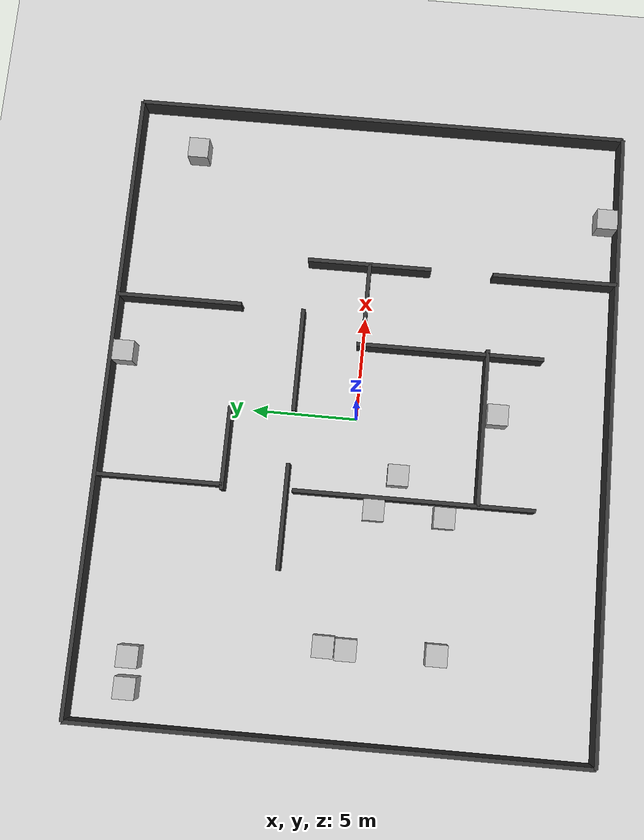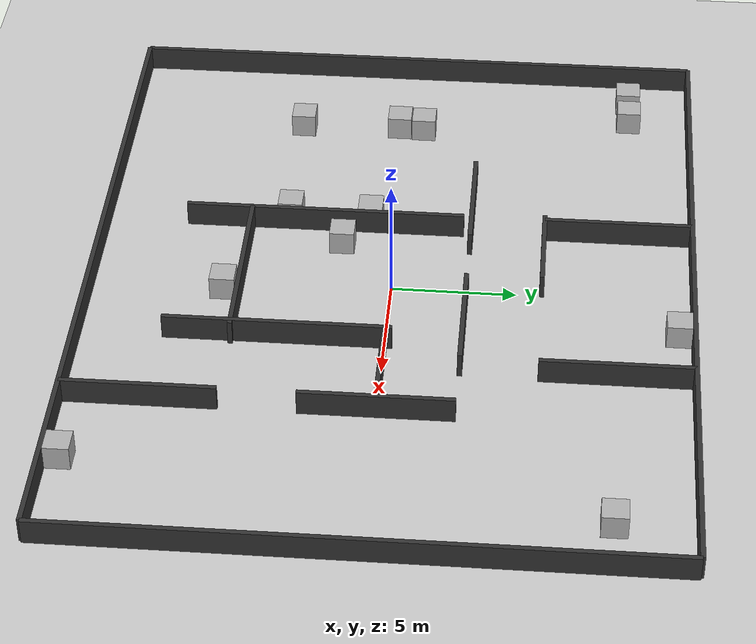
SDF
<sdf version='1.9'>
  <world name='test_world'>
    <physics name='1ms' type='ignored'>
      <max_step_size>0.001</max_step_size>
      <real_time_factor>1</real_time_factor>
      <real_time_update_rate>1000</real_time_update_rate>
    </physics>
    <plugin name='ignition::gazebo::systems::Physics' filename='ignition-gazebo-physics-system'/>
    <plugin name='ignition::gazebo::systems::UserCommands' filename='ignition-gazebo-user-commands-system'/>
    <plugin name='ignition::gazebo::systems::SceneBroadcaster' filename='ignition-gazebo-scene-broadcaster-system'/>
    <gravity>0 0 -9.8</gravity>
    <magnetic_field>6e-06 2.3e-05 -4.2e-05</magnetic_field>
    <atmosphere type='adiabatic'/>
    <scene>
      <ambient>0.4 0.4 0.4 1</ambient>
      <background>0.7 0.7 0.7 1</background>
      <shadows>true</shadows>
    </scene>
    <model name='ground_plane'>
      <static>true</static>
      <link name='link'>
        <collision name='collision'>
          <geometry>
            <plane>
              <normal>0 0 1</normal>
              <size>30 24</size>
            </plane>
          </geometry>
          <surface>
            <friction>
              <ode/>
            </friction>
            <bounce/>
            <contact/>
          </surface>
        </collision>
        <visual name='visual'>
          <geometry>
            <plane>
              <normal>0 0 1</normal>
              <size>30 24</size>
            </plane>
          </geometry>
          <material>
            <ambient>0.8 0.8 0.8 1</ambient>
            <diffuse>0.8 0.8 0.8 1</diffuse>
            <specular>0.8 0.8 0.8 1</specular>
          </material>
        </visual>
        <pose>0 0 0 0 -0 0</pose>
        <inertial>
          <pose>0 0 0 0 -0 0</pose>
          <mass>1</mass>
          <inertia>
            <ixx>1</ixx>
            <ixy>0</ixy>
            <ixz>0</ixz>
            <iyy>1</iyy>
            <iyz>0</iyz>
            <izz>1</izz>
          </inertia>
        </inertial>
        <enable_wind>false</enable_wind>
      </link>
      <pose>0 0 0 0 -0 0</pose>
      <self_collide>false</self_collide>
    </model>
    <model name='wall'>
      <link name='length_right'>
        <pose>0 -12 0 0 -0 0</pose>
        <inertial>
          <mass>1.14395</mass>
          <inertia>
            <ixx>9.5328999999999997</ixx>
            <ixy>0</ixy>
            <ixz>0</ixz>
            <iyy>0.023800000000000002</iyy>
            <iyz>0</iyz>
            <izz>9.5566999999999993</izz>
          </inertia>
          <pose>0 0 0 0 -0 0</pose>
        </inertial>
        <collision name='box_collision'>
          <geometry>
            <box>
              <size>30 0.1875 2</size>
            </box>
          </geometry>
          <surface>
            <friction>
              <ode/>
            </friction>
            <bounce/>
            <contact/>
          </surface>
        </collision>
        <visual name='box_visual'>
          <geometry>
            <box>
              <size>30 0.1875 2</size>
            </box>
          </geometry>
          <material>
            <ambient>0.2 0.2 0.2 1</ambient>
            <diffuse>0.2 0.2 0.2 1</diffuse>
            <specular>0.2 0.2 0.2 1</specular>
          </material>
        </visual>
        <enable_wind>false</enable_wind>
      </link>
      <link name='length_left'>
        <pose>0 12 0 0 -0 0</pose>
        <inertial>
          <mass>1.14395</mass>
          <inertia>
            <ixx>9.5328999999999997</ixx>
            <ixy>0</ixy>
            <ixz>0</ixz>
            <iyy>0.023800000000000002</iyy>
            <iyz>0</iyz>
            <izz>9.5566999999999993</izz>
          </inertia>
          <pose>0 0 0 0 -0 0</pose>
        </inertial>
        <collision name='box_collision'>
          <geometry>
            <box>
              <size>30 0.1875 2</size>
            </box>
          </geometry>
          <surface>
            <friction>
              <ode/>
            </friction>
            <bounce/>
            <contact/>
          </surface>
        </collision>
        <visual name='box_visual'>
          <geometry>
            <box>
              <size>30 0.1875 2</size>
            </box>
          </geometry>
          <material>
            <ambient>0.2 0.2 0.2 1</ambient>
            <diffuse>0.2 0.2 0.2 1</diffuse>
            <specular>0.2 0.2 0.2 1</specular>
          </material>
        </visual>
        <enable_wind>false</enable_wind>
      </link>
      <link name='width_right'>
        <pose>-15 0 0 0 -0 0</pose>
        <inertial>
          <mass>1000</mass>
          <inertia>
            <ixx>0.16666</ixx>
            <ixy>0</ixy>
            <ixz>0</ixz>
            <iyy>0.16666</iyy>
            <iyz>0</iyz>
            <izz>0.16666</izz>
          </inertia>
          <pose>0 0 0 0 -0 0</pose>
        </inertial>
        <collision name='box_collision'>
          <geometry>
            <box>
              <size>0.1875 24 2</size>
            </box>
          </geometry>
          <surface>
            <friction>
              <ode/>
            </friction>
            <bounce/>
            <contact/>
          </surface>
        </collision>
        <visual name='box_visual'>
          <geometry>
            <box>
              <size>0.1875 24 2</size>
            </box>
          </geometry>
          <material>
            <ambient>0.2 0.2 0.2 1</ambient>
            <diffuse>0.2 0.2 0.2 1</diffuse>
            <specular>0.2 0.2 0.2 1</specular>
          </material>
        </visual>
        <enable_wind>false</enable_wind>
      </link>
      <link name='width_left'>
        <pose>15 0 0 0 -0 0</pose>
        <inertial>
          <mass>1000</mass>
          <inertia>
            <ixx>0.16666</ixx>
            <ixy>0</ixy>
            <ixz>0</ixz>
            <iyy>0.16666</iyy>
            <iyz>0</iyz>
            <izz>0.16666</izz>
          </inertia>
          <pose>0 0 0 0 -0 0</pose>
        </inertial>
        <collision name='box_collision'>
          <geometry>
            <box>
              <size>0.1875 24 2</size>
            </box>
          </geometry>
          <surface>
            <friction>
              <ode/>
            </friction>
            <bounce/>
            <contact/>
          </surface>
        </collision>
        <visual name='box_visual'>
          <geometry>
            <box>
              <size>0.1875 24 2</size>
            </box>
          </geometry>
          <material>
            <ambient>0.2 0.2 0.2 1</ambient>
            <diffuse>0.2 0.2 0.2 1</diffuse>
            <specular>0.2 0.2 0.2 1</specular>
          </material>
        </visual>
        <enable_wind>false</enable_wind>
      </link>
      <link name='top_from_right_to_middle_width'>
        <pose>7.5 -9 0 0 -0 0</pose>
        <inertial>
          <mass>1000</mass>
          <inertia>
            <ixx>9.5328999999999997</ixx>
            <ixy>0</ixy>
            <ixz>0</ixz>
            <iyy>0.023800000000000002</iyy>
            <iyz>0</iyz>
            <izz>9.5566999999999993</izz>
          </inertia>
          <pose>0 0 0 0 -0 0</pose>
        </inertial>
        <collision name='box_collision'>
          <geometry>
            <box>
              <size>0.1875 6 2</size>
            </box>
          </geometry>
          <surface>
            <friction>
              <ode/>
            </friction>
            <bounce/>
            <contact/>
          </surface>
        </collision>
        <visual name='box_visual'>
          <geometry>
            <box>
              <size>0.1875 6 2</size>
            </box>
          </geometry>
          <material>
            <ambient>0.2 0.2 0.2 1</ambient>
            <diffuse>0.2 0.2 0.2 1</diffuse>
            <specular>0.2 0.2 0.2 1</specular>
          </material>
        </visual>
        <enable_wind>false</enable_wind>
      </link>
      <link name='top_middle_width'>
        <pose>7.5 0 0 0 -0 0</pose>
        <inertial>
          <mass>1000</mass>
          <inertia>
            <ixx>9.5328999999999997</ixx>
            <ixy>0</ixy>
            <ixz>0</ixz>
            <iyy>0.023800000000000002</iyy>
            <iyz>0</iyz>
            <izz>9.5566999999999993</izz>
          </inertia>
          <pose>0 0 0 0 -0 0</pose>
        </inertial>
        <collision name='box_collision'>
          <geometry>
            <box>
              <size>0.1875 6 2</size>
            </box>
          </geometry>
          <surface>
            <friction>
              <ode/>
            </friction>
            <bounce/>
            <contact/>
          </surface>
        </collision>
        <visual name='box_visual'>
          <geometry>
            <box>
              <size>0.1875 6 2</size>
            </box>
          </geometry>
          <material>
            <ambient>0.2 0.2 0.2 1</ambient>
            <diffuse>0.2 0.2 0.2 1</diffuse>
            <specular>0.2 0.2 0.2 1</specular>
          </material>
        </visual>
        <enable_wind>false</enable_wind>
      </link>
      <link name='top_left_length'>
        <pose>5 9 0 0 -0 0</pose>
        <inertial>
          <mass>1000</mass>
          <inertia>
            <ixx>9.5328999999999997</ixx>
            <ixy>0</ixy>
            <ixz>0</ixz>
            <iyy>0.023800000000000002</iyy>
            <iyz>0</iyz>
            <izz>9.5566999999999993</izz>
          </inertia>
          <pose>0 0 0 0 -0 0</pose>
        </inertial>
        <collision name='box_collision'>
          <geometry>
            <box>
              <size>0.1875 6 2</size>
            </box>
          </geometry>
          <surface>
            <friction>
              <ode/>
            </friction>
            <bounce/>
            <contact/>
          </surface>
        </collision>
        <visual name='box_visual'>
          <geometry>
            <box>
              <size>0.1875 6 2</size>
            </box>
          </geometry>
          <material>
            <ambient>0.2 0.2 0.2 1</ambient>
            <diffuse>0.2 0.2 0.2 1</diffuse>
            <specular>0.2 0.2 0.2 1</specular>
          </material>
        </visual>
        <enable_wind>false</enable_wind>
      </link>
      <link name='middle_length'>
        <pose>5.5 0 0 0 -0 0</pose>
        <inertial>
          <mass>1000</mass>
          <inertia>
            <ixx>9.5328999999999997</ixx>
            <ixy>0</ixy>
            <ixz>0</ixz>
            <iyy>0.023800000000000002</iyy>
            <iyz>0</iyz>
            <izz>9.5566999999999993</izz>
          </inertia>
          <pose>0 0 0 0 -0 0</pose>
        </inertial>
        <collision name='box_collision'>
          <geometry>
            <box>
              <size>4 0.1875 2</size>
            </box>
          </geometry>
          <surface>
            <friction>
              <ode/>
            </friction>
            <bounce/>
            <contact/>
          </surface>
        </collision>
        <visual name='box_visual'>
          <geometry>
            <box>
              <size>4 0.1875 2</size>
            </box>
          </geometry>
          <material>
            <ambient>0.2 0.2 0.2 1</ambient>
            <diffuse>0.2 0.2 0.2 1</diffuse>
            <specular>0.2 0.2 0.2 1</specular>
          </material>
        </visual>
        <enable_wind>false</enable_wind>
      </link>
      <link name='middle_width'>
        <pose>3.5 -4.2 0 0 -0 0</pose>
        <inertial>
          <mass>1000</mass>
          <inertia>
            <ixx>9.5328999999999997</ixx>
            <ixy>0</ixy>
            <ixz>0</ixz>
            <iyy>0.023800000000000002</iyy>
            <iyz>0</iyz>
            <izz>9.5566999999999993</izz>
          </inertia>
          <pose>0 0 0 0 -0 0</pose>
        </inertial>
        <collision name='box_collision'>
          <geometry>
            <box>
              <size>0.1875 9 2</size>
            </box>
          </geometry>
          <surface>
            <friction>
              <ode/>
            </friction>
            <bounce/>
            <contact/>
          </surface>
        </collision>
        <visual name='box_visual'>
          <geometry>
            <box>
              <size>0.1875 9 2</size>
            </box>
          </geometry>
          <material>
            <ambient>0.2 0.2 0.2 1</ambient>
            <diffuse>0.2 0.2 0.2 1</diffuse>
            <specular>0.2 0.2 0.2 1</specular>
          </material>
        </visual>
        <enable_wind>false</enable_wind>
      </link>
      <link name='middle_left_length'>
        <pose>2.5 3 0 0 -0 0</pose>
        <inertial>
          <mass>1000</mass>
          <inertia>
            <ixx>9.5328999999999997</ixx>
            <ixy>0</ixy>
            <ixz>0</ixz>
            <iyy>0.023800000000000002</iyy>
            <iyz>0</iyz>
            <izz>9.5566999999999993</izz>
          </inertia>
          <pose>0 0 0 0 -0 0</pose>
        </inertial>
        <collision name='box_collision'>
          <geometry>
            <box>
              <size>5 0.1875 2</size>
            </box>
          </geometry>
          <surface>
            <friction>
              <ode/>
            </friction>
            <bounce/>
            <contact/>
          </surface>
        </collision>
        <visual name='box_visual'>
          <geometry>
            <box>
              <size>5 0.1875 2</size>
            </box>
          </geometry>
          <material>
            <ambient>0.2 0.2 0.2 1</ambient>
            <diffuse>0.2 0.2 0.2 1</diffuse>
            <specular>0.2 0.2 0.2 1</specular>
          </material>
        </visual>
        <enable_wind>false</enable_wind>
      </link>
      <link name='low_left_length'>
        <pose>-5 3 0 0 -0 0</pose>
        <inertial>
          <mass>1000</mass>
          <inertia>
            <ixx>9.5328999999999997</ixx>
            <ixy>0</ixy>
            <ixz>0</ixz>
            <iyy>0.023800000000000002</iyy>
            <iyz>0</iyz>
            <izz>9.5566999999999993</izz>
          </inertia>
          <pose>0 0 0 0 -0 0</pose>
        </inertial>
        <collision name='box_collision'>
          <geometry>
            <box>
              <size>5 0.1875 2</size>
            </box>
          </geometry>
          <surface>
            <friction>
              <ode/>
            </friction>
            <bounce/>
            <contact/>
          </surface>
        </collision>
        <visual name='box_visual'>
          <geometry>
            <box>
              <size>5 0.1875 2</size>
            </box>
          </geometry>
          <material>
            <ambient>0.2 0.2 0.2 1</ambient>
            <diffuse>0.2 0.2 0.2 1</diffuse>
            <specular>0.2 0.2 0.2 1</specular>
          </material>
        </visual>
        <enable_wind>false</enable_wind>
      </link>
      <link name='left_blind_alley_left_wall'>
        <pose>-2 6 0 0 -0 0</pose>
        <inertial>
          <mass>1000</mass>
          <inertia>
            <ixx>9.5328999999999997</ixx>
            <ixy>0</ixy>
            <ixz>0</ixz>
            <iyy>0.023800000000000002</iyy>
            <iyz>0</iyz>
            <izz>9.5566999999999993</izz>
          </inertia>
          <pose>0 0 0 0 -0 0</pose>
        </inertial>
        <collision name='box_collision'>
          <geometry>
            <box>
              <size>4 0.1875 2</size>
            </box>
          </geometry>
          <surface>
            <friction>
              <ode/>
            </friction>
            <bounce/>
            <contact/>
          </surface>
        </collision>
        <visual name='box_visual'>
          <geometry>
            <box>
              <size>4 0.1875 2</size>
            </box>
          </geometry>
          <material>
            <ambient>0.2 0.2 0.2 1</ambient>
            <diffuse>0.2 0.2 0.2 1</diffuse>
            <specular>0.2 0.2 0.2 1</specular>
          </material>
        </visual>
        <enable_wind>false</enable_wind>
      </link>
      <link name='left_blind_alley_bottom_wall'>
        <pose>-3.75 9 0 0 -0 0</pose>
        <inertial>
          <mass>1000</mass>
          <inertia>
            <ixx>9.5328999999999997</ixx>
            <ixy>0</ixy>
            <ixz>0</ixz>
            <iyy>0.023800000000000002</iyy>
            <iyz>0</iyz>
            <izz>9.5566999999999993</izz>
          </inertia>
          <pose>0 0 0 0 -0 0</pose>
        </inertial>
        <collision name='box_collision'>
          <geometry>
            <box>
              <size>0.1875 6 2</size>
            </box>
          </geometry>
          <surface>
            <friction>
              <ode/>
            </friction>
            <bounce/>
            <contact/>
          </surface>
        </collision>
        <visual name='box_visual'>
          <geometry>
            <box>
              <size>0.1875 6 2</size>
            </box>
          </geometry>
          <material>
            <ambient>0.2 0.2 0.2 1</ambient>
            <diffuse>0.2 0.2 0.2 1</diffuse>
            <specular>0.2 0.2 0.2 1</specular>
          </material>
        </visual>
        <enable_wind>false</enable_wind>
      </link>
      <link name='left_bottom_width'>
        <pose>-3.75 -3 0 0 -0 0</pose>
        <inertial>
          <mass>1000</mass>
          <inertia>
            <ixx>9.5328999999999997</ixx>
            <ixy>0</ixy>
            <ixz>0</ixz>
            <iyy>0.023800000000000002</iyy>
            <iyz>0</iyz>
            <izz>9.5566999999999993</izz>
          </inertia>
          <pose>0 0 0 0 -0 0</pose>
        </inertial>
        <collision name='box_collision'>
          <geometry>
            <box>
              <size>0.1875 11.4 2</size>
            </box>
          </geometry>
          <surface>
            <friction>
              <ode/>
            </friction>
            <bounce/>
            <contact/>
          </surface>
        </collision>
        <visual name='box_visual'>
          <geometry>
            <box>
              <size>0.1875 11.4 2</size>
            </box>
          </geometry>
          <material>
            <ambient>0.2 0.2 0.2 1</ambient>
            <diffuse>0.2 0.2 0.2 1</diffuse>
            <specular>0.2 0.2 0.2 1</specular>
          </material>
        </visual>
        <enable_wind>false</enable_wind>
      </link>
      <link name='right_middle_length'>
        <pose>0 -6 0 0 -0 0</pose>
        <inertial>
          <mass>1000</mass>
          <inertia>
            <ixx>9.5328999999999997</ixx>
            <ixy>0</ixy>
            <ixz>0</ixz>
            <iyy>0.023800000000000002</iyy>
            <iyz>0</iyz>
            <izz>9.5566999999999993</izz>
          </inertia>
          <pose>0 0 0 0 -0 0</pose>
        </inertial>
        <collision name='box_collision'>
          <geometry>
            <box>
              <size>7.5 0.1875 2</size>
            </box>
          </geometry>
          <surface>
            <friction>
              <ode/>
            </friction>
            <bounce/>
            <contact/>
          </surface>
        </collision>
        <visual name='box_visual'>
          <geometry>
            <box>
              <size>7.5 0.1875 2</size>
            </box>
          </geometry>
          <material>
            <ambient>0.2 0.2 0.2 1</ambient>
            <diffuse>0.2 0.2 0.2 1</diffuse>
            <specular>0.2 0.2 0.2 1</specular>
          </material>
        </visual>
        <enable_wind>false</enable_wind>
      </link>
      <static>true</static>
      <self_collide>false</self_collide>
      <pose>0 0 0 0 -0 0</pose>
    </model>
    <model name='box'>
      <pose>12.8074 8.96407 0.5 0 -0 0</pose>
      <link name='box_link'>
        <inertial>
          <inertia>
            <ixx>0.16666</ixx>
            <ixy>0</ixy>
            <ixz>0</ixz>
            <iyy>0.16666</iyy>
            <iyz>0</iyz>
            <izz>0.16666</izz>
          </inertia>
          <mass>1</mass>
          <pose>0 0 0 0 -0 0</pose>
        </inertial>
        <collision name='box_collision'>
          <geometry>
            <box>
              <size>1 1 1</size>
            </box>
          </geometry>
          <surface>
            <friction>
              <ode/>
            </friction>
            <bounce/>
            <contact/>
          </surface>
        </collision>
        <visual name='box_visual'>
          <geometry>
            <box>
              <size>1 1 1</size>
            </box>
          </geometry>
          <material>
            <ambient>0.3 0.3 0.3 1</ambient>
            <diffuse>0.7 0.7 0.7 1</diffuse>
            <specular>1 1 1 1</specular>
          </material>
        </visual>
        <pose>0 0 0 0 -0 0</pose>
        <enable_wind>false</enable_wind>
      </link>
      <static>false</static>
      <self_collide>false</self_collide>
    </model>
    <model name='box_0'>
      <pose>10.8026 -11.4062 0.5 -0 -0 0</pose>
      <link name='box_link'>
        <inertial>
          <inertia>
            <ixx>0.16666</ixx>
            <ixy>0</ixy>
            <ixz>0</ixz>
            <iyy>0.16666</iyy>
            <iyz>0</iyz>
            <izz>0.16666</izz>
          </inertia>
          <mass>1</mass>
          <pose>0 0 0 0 -0 0</pose>
        </inertial>
        <collision name='box_collision'>
          <geometry>
            <box>
              <size>1 1 1</size>
            </box>
          </geometry>
          <surface>
            <friction>
              <ode/>
            </friction>
            <bounce/>
            <contact/>
          </surface>
        </collision>
        <visual name='box_visual'>
          <geometry>
            <box>
              <size>1 1 1</size>
            </box>
          </geometry>
          <material>
            <ambient>0.3 0.3 0.3 1</ambient>
            <diffuse>0.7 0.7 0.7 1</diffuse>
            <specular>1 1 1 1</specular>
          </material>
        </visual>
        <pose>0 0 0 0 -0 0</pose>
        <enable_wind>false</enable_wind>
      </link>
      <static>false</static>
      <self_collide>false</self_collide>
    </model>
    <model name='box_1'>
      <pose>2.23948 11.4062 0.5 0 -0 0</pose>
      <link name='box_link'>
        <inertial>
          <inertia>
            <ixx>0.16666</ixx>
            <ixy>0</ixy>
            <ixz>0</ixz>
            <iyy>0.16666</iyy>
            <iyz>0</iyz>
            <izz>0.16666</izz>
          </inertia>
          <mass>1</mass>
          <pose>0 0 0 0 -0 0</pose>
        </inertial>
        <collision name='box_collision'>
          <geometry>
            <box>
              <size>1 1 1</size>
            </box>
          </geometry>
          <surface>
            <friction>
              <ode/>
            </friction>
            <bounce/>
            <contact/>
          </surface>
        </collision>
        <visual name='box_visual'>
          <geometry>
            <box>
              <size>1 1 1</size>
            </box>
          </geometry>
          <material>
            <ambient>0.3 0.3 0.3 1</ambient>
            <diffuse>0.7 0.7 0.7 1</diffuse>
            <specular>1 1 1 1</specular>
          </material>
        </visual>
        <pose>0 0 0 0 -0 0</pose>
        <enable_wind>false</enable_wind>
      </link>
      <static>false</static>
      <self_collide>false</self_collide>
    </model>
    <model name='box_2'>
      <pose>-2.62395 -2.18546 0.5 0 -0 0</pose>
      <link name='box_link'>
        <inertial>
          <inertia>
            <ixx>0.16666</ixx>
            <ixy>0</ixy>
            <ixz>0</ixz>
            <iyy>0.16666</iyy>
            <iyz>0</iyz>
            <izz>0.16666</izz>
          </inertia>
          <mass>1</mass>
          <pose>0 0 0 0 -0 0</pose>
        </inertial>
        <collision name='box_collision'>
          <geometry>
            <box>
              <size>1 1 1</size>
            </box>
          </geometry>
          <surface>
            <friction>
              <ode/>
            </friction>
            <bounce/>
            <contact/>
          </surface>
        </collision>
        <visual name='box_visual'>
          <geometry>
            <box>
              <size>1 1 1</size>
            </box>
          </geometry>
          <material>
            <ambient>0.3 0.3 0.3 1</ambient>
            <diffuse>0.7 0.7 0.7 1</diffuse>
            <specular>1 1 1 1</specular>
          </material>
        </visual>
        <pose>0 0 0 0 -0 0</pose>
        <enable_wind>false</enable_wind>
      </link>
      <static>false</static>
      <self_collide>false</self_collide>
    </model>
    <model name='box_3'>
      <pose>-4.34375 -1.16949 0.5 -0 -0 0</pose>
      <link name='box_link'>
        <inertial>
          <inertia>
            <ixx>0.16666</ixx>
            <ixy>0</ixy>
            <ixz>0</ixz>
            <iyy>0.16666</iyy>
            <iyz>0</iyz>
            <izz>0.16666</izz>
          </inertia>
          <mass>1</mass>
          <pose>0 0 0 0 -0 0</pose>
        </inertial>
        <collision name='box_collision'>
          <geometry>
            <box>
              <size>1 1 1</size>
            </box>
          </geometry>
          <surface>
            <friction>
              <ode/>
            </friction>
            <bounce/>
            <contact/>
          </surface>
        </collision>
        <visual name='box_visual'>
          <geometry>
            <box>
              <size>1 1 1</size>
            </box>
          </geometry>
          <material>
            <ambient>0.3 0.3 0.3 1</ambient>
            <diffuse>0.7 0.7 0.7 1</diffuse>
            <specular>1 1 1 1</specular>
          </material>
        </visual>
        <pose>0 0 0 0 -0 0</pose>
        <enable_wind>false</enable_wind>
      </link>
      <static>false</static>
      <self_collide>false</self_collide>
    </model>
    <model name='box_4'>
      <pose>-4.43533 -4.48804 0.5 0 -0 0</pose>
      <link name='box_link'>
        <inertial>
          <inertia>
            <ixx>0.16666</ixx>
            <ixy>0</ixy>
            <ixz>0</ixz>
            <iyy>0.16666</iyy>
            <iyz>0</iyz>
            <izz>0.16666</izz>
          </inertia>
          <mass>1</mass>
          <pose>0 0 0 0 -0 0</pose>
        </inertial>
        <collision name='box_collision'>
          <geometry>
            <box>
              <size>1 1 1</size>
            </box>
          </geometry>
          <surface>
            <friction>
              <ode/>
            </friction>
            <bounce/>
            <contact/>
          </surface>
        </collision>
        <visual name='box_visual'>
          <geometry>
            <box>
              <size>1 1 1</size>
            </box>
          </geometry>
          <material>
            <ambient>0.3 0.3 0.3 1</ambient>
            <diffuse>0.7 0.7 0.7 1</diffuse>
            <specular>1 1 1 1</specular>
          </material>
        </visual>
        <pose>0 0 0 0 -0 0</pose>
        <enable_wind>false</enable_wind>
      </link>
      <static>false</static>
      <self_collide>false</self_collide>
    </model>
    <model name='box_5'>
      <pose>-10.7907 -0.431549 0.5 0 -0 0</pose>
      <link name='box_link'>
        <inertial>
          <inertia>
            <ixx>0.16666</ixx>
            <ixy>0</ixy>
            <ixz>0</ixz>
            <iyy>0.16666</iyy>
            <iyz>0</iyz>
            <izz>0.16666</izz>
          </inertia>
          <mass>1</mass>
          <pose>0 0 0 0 -0 0</pose>
        </inertial>
        <collision name='box_collision'>
          <geometry>
            <box>
              <size>1 1 1</size>
            </box>
          </geometry>
          <surface>
            <friction>
              <ode/>
            </friction>
            <bounce/>
            <contact/>
          </surface>
        </collision>
        <visual name='box_visual'>
          <geometry>
            <box>
              <size>1 1 1</size>
            </box>
          </geometry>
          <material>
            <ambient>0.3 0.3 0.3 1</ambient>
            <diffuse>0.7 0.7 0.7 1</diffuse>
            <specular>1 1 1 1</specular>
          </material>
        </visual>
        <pose>0 0 0 0 -0 0</pose>
        <enable_wind>false</enable_wind>
      </link>
      <static>false</static>
      <self_collide>false</self_collide>
    </model>
    <model name='box_6'>
      <pose>-13.3146 9.3769 0.5 0 -0 0</pose>
      <link name='box_link'>
        <inertial>
          <inertia>
            <ixx>0.16666</ixx>
            <ixy>0</ixy>
            <ixz>0</ixz>
            <iyy>0.16666</iyy>
            <iyz>0</iyz>
            <izz>0.16666</izz>
          </inertia>
          <mass>1</mass>
          <pose>0 0 0 0 -0 0</pose>
        </inertial>
        <collision name='box_collision'>
          <geometry>
            <box>
              <size>1 1 1</size>
            </box>
          </geometry>
          <surface>
            <friction>
              <ode/>
            </friction>
            <bounce/>
            <contact/>
          </surface>
        </collision>
        <visual name='box_visual'>
          <geometry>
            <box>
              <size>1 1 1</size>
            </box>
          </geometry>
          <material>
            <ambient>0.3 0.3 0.3 1</ambient>
            <diffuse>0.7 0.7 0.7 1</diffuse>
            <specular>1 1 1 1</specular>
          </material>
        </visual>
        <pose>0 0 0 0 -0 0</pose>
        <enable_wind>false</enable_wind>
      </link>
      <static>false</static>
      <self_collide>false</self_collide>
    </model>
    <model name='box_7'>
      <pose>-10.6805 -4.57585 0.5 0 -0 0</pose>
      <link name='box_link'>
        <inertial>
          <inertia>
            <ixx>0.16666</ixx>
            <ixy>0</ixy>
            <ixz>0</ixz>
            <iyy>0.16666</iyy>
            <iyz>0</iyz>
            <izz>0.16666</izz>
          </inertia>
          <mass>1</mass>
          <pose>0 0 0 0 -0 0</pose>
        </inertial>
        <collision name='box_collision'>
          <geometry>
            <box>
              <size>1 1 1</size>
            </box>
          </geometry>
          <surface>
            <friction>
              <ode/>
            </friction>
            <bounce/>
            <contact/>
          </surface>
        </collision>
        <visual name='box_visual'>
          <geometry>
            <box>
              <size>1 1 1</size>
            </box>
          </geometry>
          <material>
            <ambient>0.3 0.3 0.3 1</ambient>
            <diffuse>0.7 0.7 0.7 1</diffuse>
            <specular>1 1 1 1</specular>
          </material>
        </visual>
        <pose>0 0 0 0 -0 0</pose>
        <enable_wind>false</enable_wind>
      </link>
      <static>false</static>
      <self_collide>false</self_collide>
    </model>
    <model name='box_8'>
      <pose>-10.7334 0.610568 0.5 -0 -0 -0</pose>
      <link name='box_link'>
        <inertial>
          <inertia>
            <ixx>0.16666</ixx>
            <ixy>0</ixy>
            <ixz>0</ixz>
            <iyy>0.16666</iyy>
            <iyz>0</iyz>
            <izz>0.16666</izz>
          </inertia>
          <mass>1</mass>
          <pose>0 0 0 0 -0 0</pose>
        </inertial>
        <collision name='box_collision'>
          <geometry>
            <box>
              <size>1 1 1</size>
            </box>
          </geometry>
          <surface>
            <friction>
              <ode/>
            </friction>
            <bounce/>
            <contact/>
          </surface>
        </collision>
        <visual name='box_visual'>
          <geometry>
            <box>
              <size>1 1 1</size>
            </box>
          </geometry>
          <material>
            <ambient>0.3 0.3 0.3 1</ambient>
            <diffuse>0.7 0.7 0.7 1</diffuse>
            <specular>1 1 1 1</specular>
          </material>
        </visual>
        <pose>0 0 0 0 -0 0</pose>
        <enable_wind>false</enable_wind>
      </link>
      <static>false</static>
      <self_collide>false</self_collide>
    </model>
    <model name='box_9'>
      <pose>-11.9202 9.41727 0.5 0 -0 0</pose>
      <link name='box_link'>
        <inertial>
          <inertia>
            <ixx>0.16666</ixx>
            <ixy>0</ixy>
            <ixz>0</ixz>
            <iyy>0.16666</iyy>
            <iyz>0</iyz>
            <izz>0.16666</izz>
          </inertia>
          <mass>1</mass>
          <pose>0 0 0 0 -0 0</pose>
        </inertial>
        <collision name='box_collision'>
          <geometry>
            <box>
              <size>1 1 1</size>
            </box>
          </geometry>
          <surface>
            <friction>
              <ode/>
            </friction>
            <bounce/>
            <contact/>
          </surface>
        </collision>
        <visual name='box_visual'>
          <geometry>
            <box>
              <size>1 1 1</size>
            </box>
          </geometry>
          <material>
            <ambient>0.3 0.3 0.3 1</ambient>
            <diffuse>0.7 0.7 0.7 1</diffuse>
            <specular>1 1 1 1</specular>
          </material>
        </visual>
        <pose>0 0 0 0 -0 0</pose>
        <enable_wind>false</enable_wind>
      </link>
      <static>false</static>
      <self_collide>false</self_collide>
    </model>
    <model name='box_10'>
      <pose>0.63848 -6.65902 0.5 0 -0 0</pose>
      <link name='box_link'>
        <inertial>
          <inertia>
            <ixx>0.16666</ixx>
            <ixy>0</ixy>
            <ixz>0</ixz>
            <iyy>0.16666</iyy>
            <iyz>0</iyz>
            <izz>0.16666</izz>
          </inertia>
          <mass>1</mass>
          <pose>0 0 0 0 -0 0</pose>
        </inertial>
        <collision name='box_collision'>
          <geometry>
            <box>
              <size>1 1 1</size>
            </box>
          </geometry>
          <surface>
            <friction>
              <ode/>
            </friction>
            <bounce/>
            <contact/>
          </surface>
        </collision>
        <visual name='box_visual'>
          <geometry>
            <box>
              <size>1 1 1</size>
            </box>
          </geometry>
          <material>
            <ambient>0.3 0.3 0.3 1</ambient>
            <diffuse>0.7 0.7 0.7 1</diffuse>
            <specular>1 1 1 1</specular>
          </material>
        </visual>
        <pose>0 0 0 0 -0 0</pose>
        <enable_wind>false</enable_wind>
      </link>
      <static>false</static>
      <self_collide>false</self_collide>
    </model>
    <light name='sun' type='directional'>
      <pose>0 0 10 0 -0 0</pose>
      <cast_shadows>true</cast_shadows>
      <intensity>1</intensity>
      <direction>-0.5 0.1 -0.9</direction>
      <diffuse>0.8 0.8 0.8 1</diffuse>
      <specular>0.2 0.2 0.2 1</specular>
      <attenuation>
        <range>1000</range>
        <linear>0.01</linear>
        <constant>0.90000000000000002</constant>
        <quadratic>0.001</quadratic>
      </attenuation>
      <spot>
        <inner_angle>0</inner_angle>
        <outer_angle>0</outer_angle>
        <falloff>0</falloff>
      </spot>
    </light>
  </world>
</sdf>
